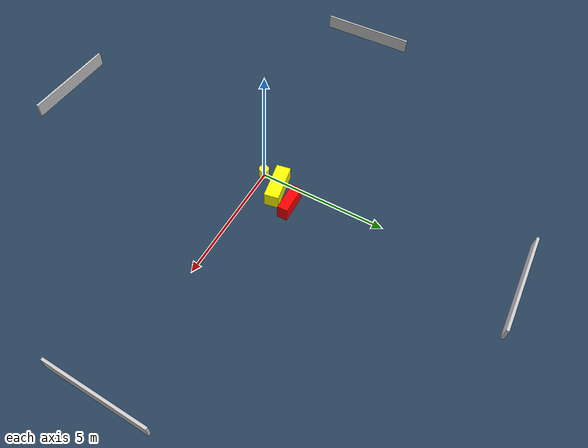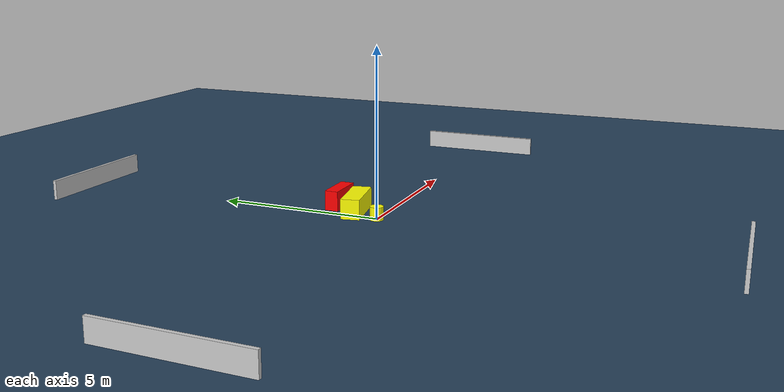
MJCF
<?xml version="1.0" ?>
<mujoco model="generated_environment">
  <option timestep="0.01" integrator="RK4" cone="elliptic"/>
  <default>
    <geom density="1"/>
  </default>
  <asset>
    <texture builtin="gradient" height="3072" name="skybox" rgb1="0.3 0.5 0.7" rgb2="0 0 0" type="skybox" width="512"/>
    <texture builtin="checker" height="300" name="groundplane" rgb1="0.2 0.3 0.4" rgb2="0.1 0.2 0.3" type="2d" width="300"/>
    <material name="groundplane" reflectance="0.2" texrepeat="5 5" texture="groundplane"/>
  </asset>
  <worldbody>
    <light dir="0 0 -1" directional="true" pos="0 0 1.5"/>
    <geom condim="3" friction="0.5 0.005 0.001" material="groundplane" name="floor" pos="0 0 0" size="0 0 0.05" type="plane"/>
    <body name="walls">
      <geom name="wall_1" condim="4" pos="-10.0 0.0 0.3" rgba="0.800000011920929 0.800000011920929 0.800000011920929 1.0" size="0.05 2.0 0.3" type="box"/>
      <geom name="wall_2" condim="4" pos="10.0 0.0 0.3" rgba="0.800000011920929 0.800000011920929 0.800000011920929 1.0" size="0.05 2.0 0.3" type="box"/>
      <geom name="wall_3" condim="4" pos="0.0 -10.0 0.3" rgba="0.800000011920929 0.800000011920929 0.800000011920929 1.0" size="2.0 0.05 0.3" type="box"/>
      <geom name="wall_4" condim="4" pos="0.0 10.0 0.3" rgba="0.800000011920929 0.800000011920929 0.800000011920929 1.0" size="2.0 0.05 0.3" type="box"/>
    </body>
    <body name="robot">
      <joint name="joint_x" type="slide" pos="0 0 0" axis="1 0 0"/>
      <joint name="joint_y" type="slide" pos="0 0 0" axis="0 1 0"/>
      <geom name="robot" type="cylinder" pos="0.0 0.0 0.2" size="0.2 0.2 0.0" mass="5.0" friction="1.0 0.005 0.0001" condim="4" rgba="1.0 1.0 0.0 1.0"/>
    </body>
    <body name="obstacle_1_movable">
      <geom name="obstacle_1_movable" condim="4" pos="0.42019450460644314 0.8389587747040306 0.3" euler="0 0 10.585843996231503" friction="0.0 0.005 0.001" rgba="1.0 1.0 0.0 1.0" size="0.7650187345275634 0.281588400088026 0.3" type="box" mass="0.1"/>
      <joint type="free"/>
    </body>
    <body name="obstacle_2_static">
      <geom name="obstacle_2_static" condim="4" pos="0.8705267424659543 1.6024709018726173 0.3" euler="0 0 90.84839965780606" friction="0.0 0.005 0.001" rgba="1.0 0.0 0.0 1.0" size="0.2029762865881285 0.5878282742099874 0.3" type="box"/>
    </body>
  </worldbody>
  <actuator>
    <motor name="actuator_x" joint="joint_x" gear="1" ctrlrange="-1 1"/>
    <motor name="actuator_y" joint="joint_y" gear="1" ctrlrange="-1 1"/>
  </actuator>
</mujoco>
